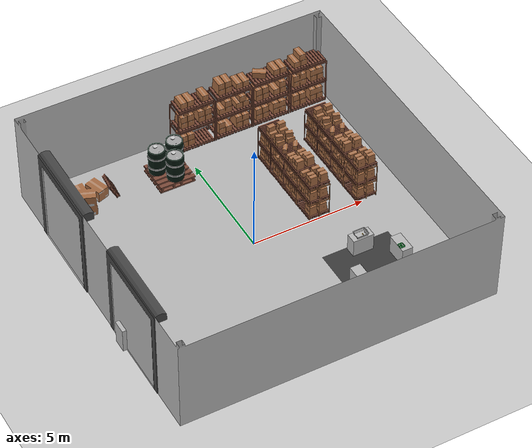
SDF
<sdf version="1.4">
 <world name="default">
  <include><uri>model://ground_plane</uri></include>
  <include>
   <uri>model://fetchit_warehouse</uri>
   <name>fetchit_warehouse</name>
   <pose>0 0 -0.005 0 0 0</pose>
  </include>
  <include>
   <uri>model://caddy_green</uri>
   <name>caddy_green1</name>
   <pose>4.609024 -3.594681 0.814290 0 0 0</pose>
  </include>
  <include>
   <uri>model://gearbox_bolt</uri>
   <name>gearbox_bolt1</name>
   <pose>3.604571 -2.373102 0.81 0 0 0</pose>
  </include>
  <include>
   <uri>model://gearbox_bolt</uri>
   <name>gearbox_bolt2</name>
   <pose>3.609393 -2.302640 0.81 0 0 0</pose>
  </include>
  <include>
   <uri>model://fetchit_table</uri>
   <name>screw_bin_pick_station</name>
   <pose>3.54929 -2.27837 0.0 0 0 0</pose>
  </include>
  <include>
   <uri>model://fetchit_table</uri>
   <name>kit_station</name>
   <pose>4.73491 -3.41284 0.0 0 0 -1.57</pose>
  </include>
  <include>
   <uri>model://fetchit_table</uri>
   <name>gearbox_pick_station</name>
   <pose>2.47048 -4.10962 0.0 0 0 1.57</pose>
  </include>
  <include><uri>model://screw_bin</uri><name>screw_bin</name><pose>3.534979 -2.3 0.801 0 0 0</pose></include>
  <light name="user_point_light_0" type="point">
   <pose>5.3 -3.3 4.0 0 0 0</pose>
   <diffuse>1 1 1 1</diffuse>
   <specular>0.1 0.1 0.1 1</specular>
   <attenuation>
    <range>10</range>
    <constant>0.5</constant>
    <linear>0.01</linear>
    <quadratic>0.001</quadratic>
   </attenuation>
   <cast_shadows>0</cast_shadows>
   <direction>0 0 -1</direction>
  </light>
  <light name="user_point_light_1" type="point">
   <pose>2.0 -3.3 4.0 0 0 0</pose>
   <diffuse>1 1 1 1</diffuse>
   <specular>0.1 0.1 0.1 1</specular>
   <attenuation>
    <range>10</range>
    <constant>0.5</constant>
    <linear>0.01</linear>
    <quadratic>0.001</quadratic>
   </attenuation>
   <cast_shadows>0</cast_shadows>
   <direction>0 0 -1</direction>
  </light>
  <light name="user_point_light_2" type="point">
   <pose>-2.0 -3.3 4.0 0 0 0</pose>
   <diffuse>1 1 1 1</diffuse>
   <specular>0.1 0.1 0.1 1</specular>
   <attenuation>
    <range>10</range>
    <constant>0.5</constant>
    <linear>0.01</linear>
    <quadratic>0.001</quadratic>
   </attenuation>
   <cast_shadows>0</cast_shadows>
   <direction>0 0 -1</direction>
  </light>
  <light name="user_point_light_3" type="point">
   <pose>-5.3 -3.3 4.0 0 -0 0</pose>
   <diffuse>1 1 1 1</diffuse>
   <specular>0.1 0.1 0.1 1</specular>
   <attenuation>
    <range>10</range>
    <constant>0.5</constant>
    <linear>0.01</linear>
    <quadratic>0.001</quadratic>
   </attenuation>
   <cast_shadows>0</cast_shadows>
   <direction>0 0 -1</direction>
  </light>
  <light name="user_point_light_4" type="point">
   <pose>5.3 3.3 4.0 0 0 0</pose>
   <diffuse>1 1 1 1</diffuse>
   <specular>0.1 0.1 0.1 1</specular>
   <attenuation>
    <range>10</range>
    <constant>0.5</constant>
    <linear>0.01</linear>
    <quadratic>0.001</quadratic>
   </attenuation>
   <cast_shadows>0</cast_shadows>
   <direction>0 0 -1</direction>
  </light>
  <light name="user_point_light_5" type="point">
   <pose>2.0 3.3 4.0 0 0 0</pose>
   <diffuse>1 1 1 1</diffuse>
   <specular>0.1 0.1 0.1 1</specular>
   <attenuation>
    <range>10</range>
    <constant>0.5</constant>
    <linear>0.01</linear>
    <quadratic>0.001</quadratic>
   </attenuation>
   <cast_shadows>0</cast_shadows>
   <direction>0 0 -1</direction>
  </light>
  <light name="user_point_light_6" type="point">
   <pose>-2.0 3.3 4.0 0 0 0</pose>
   <diffuse>1 1 1 1</diffuse>
   <specular>0.1 0.1 0.1 1</specular>
   <attenuation>
    <range>10</range>
    <constant>0.5</constant>
    <linear>0.01</linear>
    <quadratic>0.001</quadratic>
   </attenuation>
   <cast_shadows>0</cast_shadows>
   <direction>0 0 -1</direction>
  </light>
  <light name="user_point_light_7" type="point">
   <pose>-5.3 3.3 4.0 0 -0 0</pose>
   <diffuse>1 1 1 1</diffuse>
   <specular>0.1 0.1 0.1 1</specular>
   <attenuation>
    <range>10</range>
    <constant>0.5</constant>
    <linear>0.01</linear>
    <quadratic>0.001</quadratic>
   </attenuation>
   <cast_shadows>0</cast_shadows>
   <direction>0 0 -1</direction>
  </light>
 </world>
</sdf>

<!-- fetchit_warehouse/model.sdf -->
<sdf version='1.4'>
  <model name="fetchit_warehouse">
      <static>1</static>
      <link name='link'>
        <visual name='visual'>
          <geometry>
            <mesh>
              <uri>model://fetchit_warehouse/meshes/fetchit_env_version6.dae</uri>
              <scale>1 1 1</scale>
            </mesh>
          </geometry>
        </visual>
        <velocity_decay>
          <linear>0.000000</linear>
          <angular>0.000000</angular>
        </velocity_decay>
        <self_collide>0</self_collide>
        <kinematic>0</kinematic>
        <gravity>1</gravity>
      </link>
  </model>
</sdf>

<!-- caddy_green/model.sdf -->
<sdf version='1.4'>
  <model name="caddy_green">
      <static>1</static>
      <link name='link'>
        <inertial>
          <mass>0.0680389</mass>
          <inertia>
            <ixx>0.00040636575898</ixx>
            <ixy>0.000000</ixy>
            <ixz>0.000000</ixz>
            <iyy>0.00040636575898</iyy>
            <iyz>0.000000</iyz>
            <izz>0.000625974918075</izz>
          </inertia>
        </inertial>
        <collision name='collision'>
          <geometry>
            <mesh>
              <uri>model://caddy_green/meshes/Romanoff_Small_Utility_Caddy_cof.stl</uri>
              <scale>1 1 1</scale>
            </mesh>
          </geometry>
          <surface>
            <friction>
              <ode>
                <mu>1.0</mu>
                <mu2>1.0</mu2>
              </ode>
            </friction>
          </surface>
        </collision>

        <visual name='visual'>
          <geometry>
            <mesh>
              <uri>model://caddy_green/meshes/Romanoff_Small_Utility_Caddy_cof_green.dae</uri>
              <scale>1 1 1</scale>
            </mesh>
          </geometry>
        </visual>
        <velocity_decay>
          <linear>0.000000</linear>
          <angular>0.000000</angular>
        </velocity_decay>
        <self_collide>0</self_collide>
        <kinematic>0</kinematic>
        <gravity>1</gravity>
      </link>
  </model>
</sdf>

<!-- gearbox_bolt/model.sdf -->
<sdf version='1.4'>
  <model name="gearbox_bolt">
      <static>0</static>
      <link name='link'>
        <inertial>
          <pose>0 0 0.030633 0 0 0</pose>
          <mass>0.0592855</mass>
          <inertia>
            <ixx>2.2977502034e-05</ixx>
            <ixy>0.000000</ixy>
            <ixz>0.000000</ixz>
            <iyy>2.29905352792e-05</iyy>
            <iyz>0.000000</iyz>
            <izz>8.87979175473e-06</izz>
          </inertia>
        </inertial>
        <collision name='collision'>
          <geometry>
            <mesh>
              <uri>model://gearbox_bolt/meshes/gear_bolt_simple.stl</uri>
              <scale>1 1 1</scale>
            </mesh>
          </geometry>
          <surface>
            <friction>
              <ode>
                <mu>30.0</mu>
                <mu2>30.0</mu2>
              </ode>
            </friction>
          </surface>
        </collision>
        <visual name='visual'>
          <geometry>
            <mesh>
              <uri>model://gearbox_bolt/meshes/screw_v1.dae</uri>
              <scale>1 1 1</scale>
            </mesh>
          </geometry>
        </visual>
        <velocity_decay>
          <linear>0.000000</linear>
          <angular>0.000000</angular>
        </velocity_decay>
        <self_collide>0</self_collide>
        <kinematic>0</kinematic>
        <gravity>1</gravity>
      </link>
  </model>
</sdf>

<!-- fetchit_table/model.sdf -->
<sdf version='1.4'>
  <model name="fetchit_table">
      <static>1</static>
      <link name='link'>
        <inertial>
          <mass>0.0592855</mass>
          <inertia>
            <ixx>2.31818050784e-05</ixx>
            <ixy>0.000000</ixy>
            <ixz>0.000000</ixz>
            <iyy>2.31851837098e-05</iyy>
            <iyz>0.000000</iyz>
            <izz>8.88944636856e-06</izz>
          </inertia>
        </inertial>
        <collision name='collision'>
          <geometry>
            <mesh>
              <uri>model://fetchit_table/meshes/simple.dae</uri>
              <scale>1 1 1</scale>
            </mesh>
          </geometry>
          <surface>
            <friction>
              <ode>
                <mu>30.0</mu>
                <mu2>30.0</mu2>
              </ode>
            </friction>
          </surface>
        </collision>
        <visual name='visual'>
          <geometry>
            <mesh>
              <uri>model://fetchit_table/meshes/tablefetchit_v2_materials.dae</uri>
              <scale>1 1 1</scale>
            </mesh>
          </geometry>
        </visual>
        <velocity_decay>
          <linear>0.000000</linear>
          <angular>0.000000</angular>
        </velocity_decay>
        <self_collide>0</self_collide>
        <kinematic>0</kinematic>
        <gravity>1</gravity>
      </link>
  </model>
</sdf>

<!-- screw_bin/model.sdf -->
<sdf version='1.4'>
  <model name="screw_bin">
      <static>1</static>
      <link name='link'>
        <inertial>
          <mass>0.0189132</mass>
          <inertia>
            <ixx>3.36060179959e-06</ixx>
            <ixy>0.000000</ixy>
            <ixz>0.000000</ixz>
            <iyy>3.36060179959e-06</iyy>
            <iyz>0.000000</iyz>
            <izz>1.34975977923e-06</izz>
          </inertia>
        </inertial>
        <collision name='collision'>
          <geometry>
            <mesh>
              <uri>model://screw_bin/meshes/screw_bin.stl</uri>
              <scale>1 1 1</scale>
            </mesh>
          </geometry>
          <surface>
            <friction>
              <ode>
                <mu>30.0</mu>
                <mu2>30.0</mu2>
              </ode>
            </friction>
          </surface>
        </collision>
        <visual name='visual'>
          <geometry>
            <mesh>
              <uri>model://screw_bin/meshes/screw_bin.dae</uri>
              <scale>1 1 1</scale>
            </mesh>
          </geometry>
        </visual>
        <velocity_decay>
          <linear>0.000000</linear>
          <angular>0.000000</angular>
        </velocity_decay>
        <self_collide>0</self_collide>
        <kinematic>0</kinematic>
        <gravity>1</gravity>
      </link>
  </model>
</sdf>
